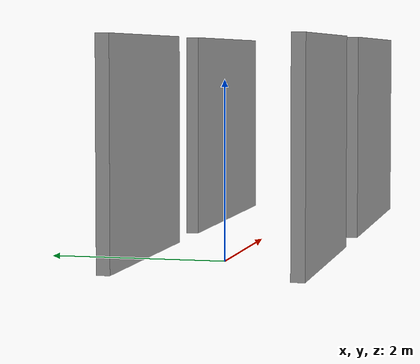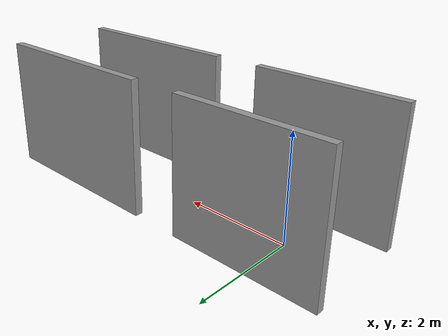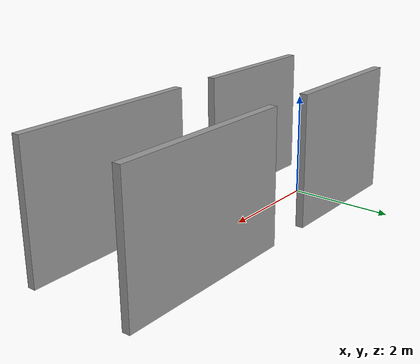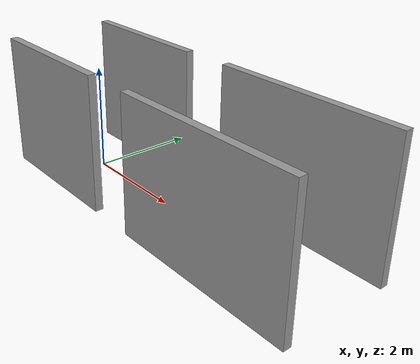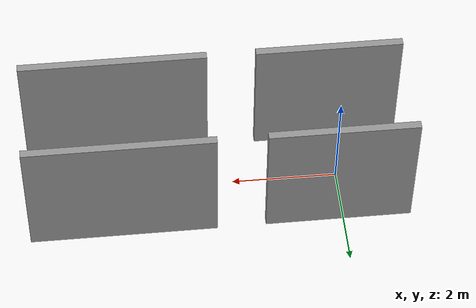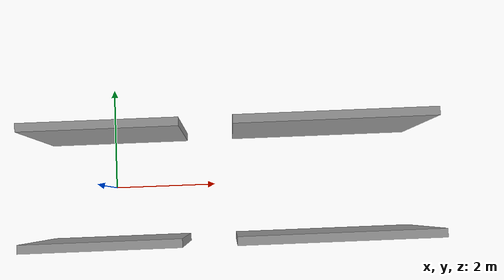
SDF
<?xml version='1.0'?>
<sdf version='1.6'>
  <model name='Untitled'>
    <pose frame=''>2.3042 -0.031405 0 0 -0 0</pose>
    <link name='Wall_0'>
      <collision name='Wall_0_Collision'>
        <geometry>
          <box>
            <size>2.75 0.15 2.5</size>
          </box>
        </geometry>
        <pose frame=''>0 0 1.25 0 -0 0</pose>
      </collision>
      <visual name='Wall_0_Visual'>
        <pose frame=''>0 0 1.25 0 -0 0</pose>
        <geometry>
          <box>
            <size>2.75 0.15 2.5</size>
          </box>
        </geometry>
        <material>
          <script>
            <uri>file://media/materials/scripts/gazebo.material</uri>
            <name>Gazebo/Grey</name>
          </script>
          <ambient>1 1 1 1</ambient>
        </material>
        <meta>
          <layer>0</layer>
        </meta>
      </visual>
      <pose frame=''>-2.20493 -1.01856 0 0 -0 0</pose>
    </link>
    <link name='Wall_2'>
      <collision name='Wall_2_Collision'>
        <geometry>
          <box>
            <size>3.5 0.15 2.5</size>
          </box>
        </geometry>
        <pose frame=''>0 0 1.25 0 -0 0</pose>
      </collision>
      <visual name='Wall_2_Visual'>
        <pose frame=''>0 0 1.25 0 -0 0</pose>
        <geometry>
          <box>
            <size>3.5 0.15 2.5</size>
          </box>
        </geometry>
        <material>
          <script>
            <uri>file://media/materials/scripts/gazebo.material</uri>
            <name>Gazebo/Grey</name>
          </script>
          <ambient>1 1 1 1</ambient>
        </material>
        <meta>
          <layer>0</layer>
        </meta>
      </visual>
      <pose frame=''>1.83349 -1.02368 0 0 -0 0</pose>
    </link>
    <link name='Wall_4'>
      <collision name='Wall_4_Collision'>
        <geometry>
          <box>
            <size>2.75 0.15 2.5</size>
          </box>
        </geometry>
        <pose frame=''>0 0 1.25 0 -0 0</pose>
      </collision>
      <visual name='Wall_4_Visual'>
        <pose frame=''>0 0 1.25 0 -0 0</pose>
        <geometry>
          <box>
            <size>2.75 0.15 2.5</size>
          </box>
        </geometry>
        <material>
          <script>
            <uri>file://media/materials/scripts/gazebo.material</uri>
            <name>Gazebo/Grey</name>
          </script>
          <ambient>1 1 1 1</ambient>
        </material>
        <meta>
          <layer>0</layer>
        </meta>
      </visual>
      <pose frame=''>-2.20864 1.01913 0 0 -0 0</pose>
    </link>
    <link name='Wall_6'>
      <collision name='Wall_6_Collision'>
        <geometry>
          <box>
            <size>3.5 0.15 2.5</size>
          </box>
        </geometry>
        <pose frame=''>0 0 1.25 0 -0 0</pose>
      </collision>
      <visual name='Wall_6_Visual'>
        <pose frame=''>0 0 1.25 0 -0 0</pose>
        <geometry>
          <box>
            <size>3.5 0.15 2.5</size>
          </box>
        </geometry>
        <material>
          <script>
            <uri>file://media/materials/scripts/gazebo.material</uri>
            <name>Gazebo/Grey</name>
          </script>
          <ambient>1 1 1 1</ambient>
        </material>
        <meta>
          <layer>0</layer>
        </meta>
      </visual>
      <pose frame=''>1.83364 1.02368 0 0 -0 0</pose>
    </link>
    <static>1</static>
  </model>
</sdf>
